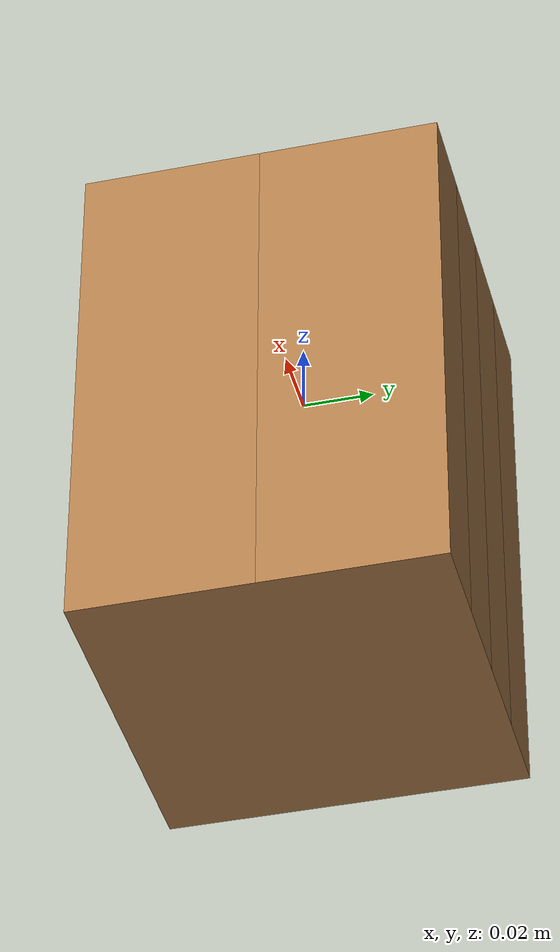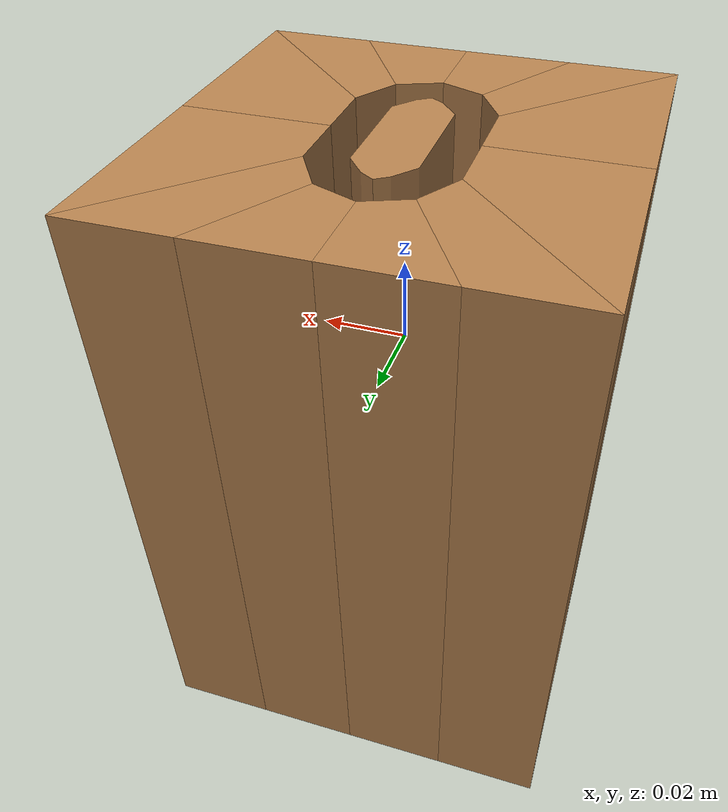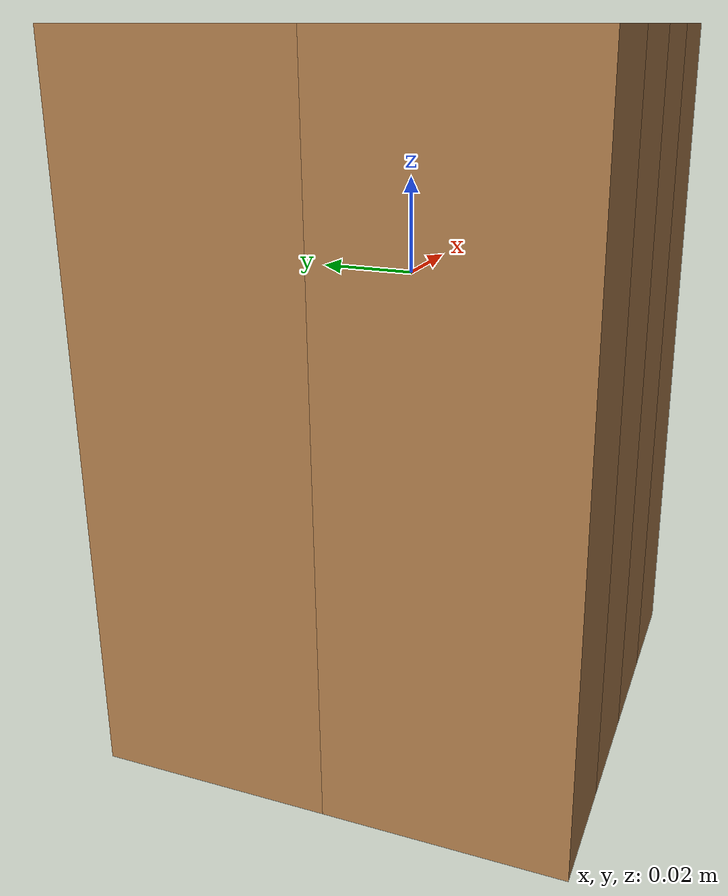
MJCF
<?xml version="1.0" ?>
<mujoco model="hole0">
    <asset>
        <mesh file="hole/0.stl" name="mesh_0"/>
        <mesh file="hole/1.stl" name="mesh_1"/>
        <mesh file="hole/2.stl" name="mesh_2"/>
        <mesh file="hole/3.stl" name="mesh_3"/>
        <mesh file="hole/4.stl" name="mesh_4"/>
        <mesh file="hole/5.stl" name="mesh_5"/>
        <mesh file="hole/6.stl" name="mesh_6"/>
        <mesh file="hole/7.stl" name="mesh_7"/>
        <mesh file="hole/8.stl" name="mesh_8"/>
        <mesh file="hole/9.stl" name="mesh_9"/>
        <mesh file="hole/10.stl" name="mesh_10"/>
        <mesh file="hole/11.stl" name="mesh_11"/>
        <mesh file="hole/12.stl" name="mesh_12"/>
        <mesh file="hole/13.stl" name="mesh_13"/>
        <texture file="../texture/red-wood.png" name="red-wood"/>
        <material name="redwood_mat" texture="red-wood" texrepeat="3 3" specular="0.4" shininess="0.1"/>
    </asset>
    <worldbody>
        <body>
            <body name="object">
                <geom mesh="mesh_0" type="mesh" group="0" material="redwood_mat"/>
                <geom mesh="mesh_1" type="mesh" group="0" material="redwood_mat"/>
                <geom mesh="mesh_2" type="mesh" group="0" material="redwood_mat"/>
                <geom mesh="mesh_3" type="mesh" group="0" material="redwood_mat"/>
                <geom mesh="mesh_4" type="mesh" group="0" material="redwood_mat"/>
                <geom mesh="mesh_5" type="mesh" group="0" material="redwood_mat"/>
                <geom mesh="mesh_6" type="mesh" group="0" material="redwood_mat"/>
                <geom mesh="mesh_7" type="mesh" group="0" material="redwood_mat"/>
                <geom mesh="mesh_8" type="mesh" group="0" material="redwood_mat"/>
                <geom mesh="mesh_9" type="mesh" group="0" material="redwood_mat"/>
                <geom mesh="mesh_10" type="mesh" group="0" material="redwood_mat"/>
                <geom mesh="mesh_11" type="mesh" group="0" material="redwood_mat"/>
                <geom mesh="mesh_12" type="mesh" group="0" material="redwood_mat"/>
                <geom mesh="mesh_13" type="mesh" group="0" material="redwood_mat"/>
            </body>
        </body>
    </worldbody>
</mujoco>
